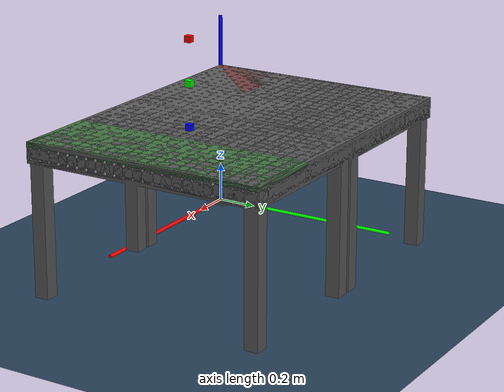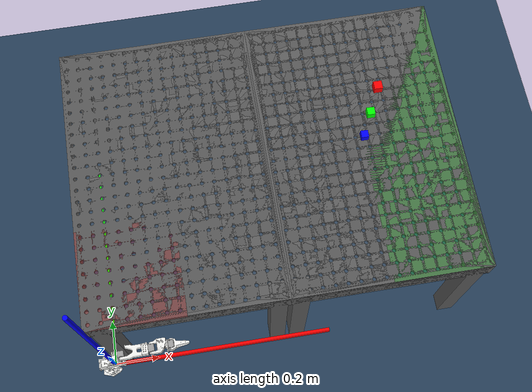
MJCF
<mujoco model="scene">

	<include file="so101_new_calib.xml" />

    <compiler angle="radian" autolimits="true" />

    <option timestep="0.002" integrator="implicitfast" solver="PGS" gravity="0 0 -9.82"
            cone="elliptic">
    </option>

	<!-- 利用mujoco软件来调整Visualization->Free Camera->点击Align更新查看，需要在env代码里进行设置，不能自动启用 -->
    <statistic center="1.8 1.1 1.7" extent="0.8" meansize="0.08" />

    <visual>
        <headlight diffuse="0.6 0.6 0.6" ambient="0.1 0.1 0.1" specular="0 0 0" />
        <rgba haze="0.15 0.25 0.35 1" />

		<!-- 利用mujoco软件来调整Visualization->Free Camera->点击Align更新查看，需要在env代码里进行设置，不能自动启用 -->
		<global azimuth="210" elevation="-35" offheight="1280" offwidth="1280"/>
    </visual>

    <asset>
        <texture type="skybox" builtin="gradient" rgb1="0.3 0.5 0.7" rgb2="0 0 0" width="512"
                 height="3072" />
        <texture type="2d" name="groundplane" builtin="checker" mark="edge" rgb1="0.2 0.3 0.4"
                 rgb2="0.1 0.2 0.3" markrgb="0.8 0.8 0.8" width="300" height="300" />
        <material name="groundplane" texture="groundplane" texuniform="true" texrepeat="5 5"
                  reflectance="0.2" />

        <!--meshes-->
        <mesh name ="table" file="table/sigmund_table.stl" scale= "1 1 1"/>

    </asset>

    <worldbody>
		<light pos="1.3 0.7 2.5" dir="0 0 -1" directional="true" />
		<geom name="floor" size="0 0 0.05" type="plane" material="groundplane" />
		<geom name="x-aixs" group="2" type="cylinder" contype="0" conaffinity="0"
			fromto="0 0 0 1 0 0" size="0.01" rgba="1 0 0 1" />
		<geom name="y-aixs" group="2" type="cylinder" contype="0" conaffinity="0"
			fromto="0 0 0 0 1 0" size="0.01" rgba="0 1 0 1" />
		<geom name="z-aixs" group="2" type="cylinder" contype="0" conaffinity="0"
			fromto="0 0 0 0 0 1" size="0.01" rgba="0 0 1 1" />

		<!-- 利用mujoco软件来调整Rendering->Camera -->
		<camera name="cam" pos="0.85 0.8 1.6" xyaxes="0 -1 0 1 0 0.5" mode="fixed" />

		<body name="mocap" mocap="true" pos="0.8 0.6 0.74">
			<geom name="mocap" type="sphere" size="0.000001"/>
		</body>

		<!-- 红色立方体 -->

		<!-- 绿色立方体 -->

		<!-- 蓝色立方体 -->

		<!-- 立方体堆叠 -->
				<!-- 红色立方体 -->
		<body name="RedBox" pos="1.2 0.6 1.2" quat="1 0 0 0">
		  <joint name="RedBox" type="free" />
		  <geom name="RedBox" type="box" size="0.015 0.015 0.015" rgba="1 0 0 1"
		        condim="6" friction="1.0 0.005 0.0001" solref="0.02 1" solimp="0.9 0.95 0.001"/>
		</body>

		<!-- 绿色立方体 -->
		<body name="GreenBox" pos="1.2 0.6 1.0" quat="1 0 0 0">
		  <joint name="GreenBox" type="free" />
		  <geom name="GreenBox" type="box" size="0.015 0.015 0.015" rgba="0 1 0 1"
		        condim="6" friction="1.0 0.005 0.0001" solref="0.02 1" solimp="0.9 0.95 0.001"/>
		</body>

		<!-- 蓝色立方体 -->
		<body name="BlueBox" pos="1.2 0.6 0.8" quat="1 0 0 0">
		  <joint name="BlueBox" type="free" />
		  <geom name="BlueBox" type="box" size="0.015 0.015 0.015" rgba="0 0 1 1"
		        condim="6" friction="1.0 0.005 0.0001" solref="0.02 1" solimp="0.9 0.95 0.001"/>
		</body>

		<!--Zones-->
		<body name="zone_pickup" pos="1.4 0.6 0.73" quat="1 0 0 0">
			<geom name="zone_pickup" type="box" size="0.2 0.6 0.01" rgba="0 1 0 0.1" contype="0" conaffinity="0"/>
		</body>
		<body name="zone_drop" pos="0.2 0.2 0.73" quat="1 0 0 0">
			<geom name="zone_drop" type="box" size="0.2 0.2 0.01" rgba="1 0 0 0.1" contype="0" conaffinity="0"/>
		</body>

        <!--table -->
		<body name = "table1" euler="0 0 0" pos= "0.8 0 0.74" >
		  <geom name = "table1" type="mesh" mesh="table" group="2" rgba="0.35 0.35 0.35 1" mass="0" contype="0" conaffinity="0"/>
		</body>
		<body name = "table2" euler="0 0 0" pos= "1.6 0 0.74" >
		  <geom name = "table2" type="mesh" mesh="table" group="2" rgba="0.35 0.35 0.35 1" mass="0" contype="0" conaffinity="0"/>
		</body>

		<body name="simple_table" pos="0.8 0.6 0.69" quat="1 0 0 0">
			<geom name="simple_table" type="box" size="0.8 0.6 0.05" rgba="0.5 0.5 0.5 0.1"/>
		</body>
    </worldbody>
<equality>
    <!-- 设置正确的锚点，让 base 在 mocap 位置 -->
    <weld name="attach_so101_to_mocap" body1="mocap" body2="base" anchor="0 0 0" active="true" />
</equality>

</mujoco>

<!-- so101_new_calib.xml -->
<!-- Generated using onshape-to-robot -->
<!-- Onshape https://cad.onshape.com/documents/7715cc284bb430fe6dab4ffd/w/4fd0791b683777b02f8d975a/e/826c553ede3b7592eb9ca800 -->
<mujoco model="so101_new_calib">
  <compiler angle="radian" meshdir="assets" autolimits="true"/>
  <default>
    <default class="so101_new_calib">
      <joint frictionloss="0.1" armature="0.005"/>
      <position kp="50" dampratio="1"/>
      <default class="visual">
        <geom type="mesh" contype="0" conaffinity="0" group="2"/>
      </default>
      <default class="collision">
        <geom group="3"/>
      </default>
    </default>
  </default>
  <!-- Additional joints_properties.xml -->
  <default>
    <default class="sts3215">
      <geom contype="0" conaffinity="0"/>
      <joint damping="0.60" frictionloss="0.052" armature="0.028"/>
      <position kp="17.8" kv="0.0" forcerange="-3.35 3.35"/>
    </default>
    <default class="backlash">
      <!-- +/- 0.5° of backlash -->
      <joint damping="0.01" frictionloss="0" armature="0.01" limited="true" range="-0.008726646259971648 0.008726646259971648"/>
    </default>
  </default>
  <worldbody>
    <!-- Link base -->
    <!-- Definition position and orientation of lerobot -->
    <body name="base" pos="-0.02 -0.02 -0.03" quat="1 0 0 1" childclass="so101_new_calib">
    <!-- Origin-simulation -->
    <!-- make base can be changed  -->

    <!-- make base can be changed  -->
    <joint type="free"/>
      <inertial pos="0.020739 0.00204287 0.065966" mass="0.147" fullinertia="0.000136117 0.000114686 0.000130364 4.59787e-07 9.75275e-08 -4.97151e-06"/>
      <!-- Part base_motor_holder_so101_v1 -->
      <geom type="mesh" class="visual" pos="0.0206915 0.0221255 0.0300817" quat="0.707107 0.707107 7.85046e-16 8.68107e-16" mesh="base_motor_holder_so101_v1" material="base_motor_holder_so101_v1_material"/>
      <!-- Part base_so101_v2 -->
      <geom type="mesh" class="visual" pos="0.0207909 0.0221255 0.0300817" quat="0.707107 0.707107 -0 -0" mesh="base_so101_v2" material="base_so101_v2_material"/>
      <!-- Part sts3215_03a_v1 -->
      <geom type="mesh" class="visual" pos="0.0207909 -0.0105745 0.0761817" quat="0.707107 -7.69919e-16 8.95976e-16 -0.707107" mesh="sts3215_03a_v1" material="sts3215_03a_v1_material"/>
      <!-- Part waveshare_mounting_plate_so101_v2 -->
      <geom type="mesh" class="visual" pos="0.0205915 0.0467435 0.0798817" quat="0.707107 0.707107 -3.34318e-15 5.1276e-15" mesh="waveshare_mounting_plate_so101_v2" material="waveshare_mounting_plate_so101_v2_material"/>
      <!-- Frame base -->
      <site group="3" name="base" pos="0.020791 0.0157608 0.0324817" quat="0 1 0 0"/>
      <!-- Link shoulder -->
      <body name="shoulder" pos="0.0207909 -0.0230745 0.0948817" quat="7.88629e-16 -0.707107 -0.707107 7.69003e-16">
        <!-- Joint from base to shoulder -->
        <joint axis="0 0 1" name="1" type="hinge" range="-1.9198621771937616 1.9198621771937634" class="sts3215"/>
        <inertial pos="-0.0307604 -1.66727e-05 -0.0252713" mass="0.100006" fullinertia="8.3759e-05 8.10403e-05 2.39783e-05 7.55525e-08 -1.16342e-06 1.54663e-07"/>
        <!-- Part sts3215_03a_v1_2 -->
        <geom type="mesh" class="visual" pos="-0.0303992 0.000422241 -0.0417" quat="0.5 0.5 0.5 -0.5" mesh="sts3215_03a_v1" material="sts3215_03a_v1_material"/>
        <geom type="mesh" class="collision" pos="-0.0303992 0.000422241 -0.0417" quat="0.5 0.5 0.5 -0.5" mesh="sts3215_03a_v1" material="sts3215_03a_v1_material"/>
        <!-- Part motor_holder_so101_base_v1 -->
        <geom type="mesh" class="visual" pos="-0.0675992 -0.000177759 0.0158499" quat="0.5 0.5 -0.5 0.5" mesh="motor_holder_so101_base_v1" material="motor_holder_so101_base_v1_material"/>
        <geom type="mesh" class="collision" pos="-0.0675992 -0.000177759 0.0158499" quat="0.5 0.5 -0.5 0.5" mesh="motor_holder_so101_base_v1" material="motor_holder_so101_base_v1_material"/>
        <!-- Part rotation_pitch_so101_v1 -->
        <geom type="mesh" class="visual" pos="0.0122008 2.22413e-05 0.0464" quat="0.707107 -0.707107 0 0" mesh="rotation_pitch_so101_v1" material="rotation_pitch_so101_v1_material"/>
        <geom type="mesh" class="collision" pos="0.0122008 2.22413e-05 0.0464" quat="0.707107 -0.707107 0 0" mesh="rotation_pitch_so101_v1" material="rotation_pitch_so101_v1_material"/>
        <!-- Link upper_arm -->
        <body name="upper_arm" pos="-0.0303992 -0.0182778 -0.0542" quat="0.5 -0.5 -0.5 -0.5">
          <!-- Joint from shoulder to upper_arm -->
          <joint axis="0 0 1" name="2" type="hinge" range="-1.7453292519943269 1.7453292519943322" class="sts3215"/>
          <inertial pos="-0.0898471 -0.00838224 0.0184089" mass="0.103" fullinertia="4.08002e-05 0.000147318 0.000142487 -1.97819e-05 -4.03016e-08 8.97326e-09"/>
          <!-- Part sts3215_03a_v1_3 -->
          <geom type="mesh" class="visual" pos="-0.11257 -0.0155 0.0187" quat="4.31775e-16 -0.707107 0.707107 -2.94392e-16" mesh="sts3215_03a_v1" material="sts3215_03a_v1_material"/>
          <geom type="mesh" class="collision" pos="-0.11257 -0.0155 0.0187" quat="4.31775e-16 -0.707107 0.707107 -2.94392e-16" mesh="sts3215_03a_v1" material="sts3215_03a_v1_material"/>
          <!-- Part upper_arm_so101_v1 -->
          <geom type="mesh" class="visual" pos="-0.065085 0.012 0.0182" quat="0 1 0 0" mesh="upper_arm_so101_v1" material="upper_arm_so101_v1_material"/>
          <geom type="mesh" class="collision" pos="-0.065085 0.012 0.0182" quat="0 1 0 0" mesh="upper_arm_so101_v1" material="upper_arm_so101_v1_material"/>
          <!-- Link lower_arm -->
          <body name="lower_arm" pos="-0.11257 -0.028 2.46331e-16" quat="0.707107 -2.94392e-16 -3.85906e-16 0.707107">
            <!-- Joint from upper_arm to lower_arm -->
            <joint axis="0 0 1" name="3" type="hinge" range="-1.7453292519943295 1.5707963267948966" class="sts3215"/>
            <inertial pos="-0.0980701 0.00324376 0.0182831" mass="0.104" fullinertia="2.87438e-05 0.000159844 0.00014529 7.41152e-06 1.26409e-06 -4.90188e-08"/>
            <!-- Part under_arm_so101_v1 -->
            <geom type="mesh" class="visual" pos="-0.0648499 -0.032 0.0182" quat="0 1 0 0" mesh="under_arm_so101_v1" material="under_arm_so101_v1_material"/>
            <geom type="mesh" class="collision" pos="-0.0648499 -0.032 0.0182" quat="0 1 0 0" mesh="under_arm_so101_v1" material="under_arm_so101_v1_material"/>
            <!-- Part motor_holder_so101_wrist_v1 -->
            <geom type="mesh" class="visual" pos="-0.0648499 -0.032 0.018" quat="3.3891e-16 -1 -1.9186e-15 6.33174e-16" mesh="motor_holder_so101_wrist_v1" material="motor_holder_so101_wrist_v1_material"/>
            <geom type="mesh" class="collision" pos="-0.0648499 -0.032 0.018" quat="3.3891e-16 -1 -1.9186e-15 6.33174e-16" mesh="motor_holder_so101_wrist_v1" material="motor_holder_so101_wrist_v1_material"/>
            <!-- Part sts3215_03a_v1_4 -->
            <geom type="mesh" class="visual" pos="-0.1224 0.0052 0.0187" quat="8.32667e-16 -1.56949e-15 -1 5.55112e-16" mesh="sts3215_03a_v1" material="sts3215_03a_v1_material"/>
            <geom type="mesh" class="collision" pos="-0.1224 0.0052 0.0187" quat="8.32667e-16 -1.56949e-15 -1 5.55112e-16" mesh="sts3215_03a_v1" material="sts3215_03a_v1_material"/>
            <!-- Link wrist -->
            <body name="wrist" pos="-0.1349 0.0052 1.65232e-16" quat="0.707107 1.31614e-15 9.90601e-17 -0.707107">
              <!-- Joint from lower_arm to wrist -->
              <joint axis="0 0 1" name="4" type="hinge" range="-1.6580627969561903 1.658062781833036" class="sts3215"/>
              <inertial pos="-0.000103312 -0.0386143 0.0281156" mass="0.079" fullinertia="3.68263e-05 2.5391e-05 2.1e-05 1.7893e-08 -5.28128e-08 3.6412e-06"/>
              <!-- Part sts3215_03a_no_horn_v1 -->
              <geom type="mesh" class="visual" pos="5.55112e-17 -0.0424 0.0306" quat="0.5 0.5 0.5 -0.5" mesh="sts3215_03a_no_horn_v1" material="sts3215_03a_no_horn_v1_material"/>
              <geom type="mesh" class="collision" pos="5.55112e-17 -0.0424 0.0306" quat="0.5 0.5 0.5 -0.5" mesh="sts3215_03a_no_horn_v1" material="sts3215_03a_no_horn_v1_material"/>
              <!-- Part wrist_roll_pitch_so101_v2 -->
              <geom type="mesh" class="visual" pos="0 -0.028 0.0181" quat="0.5 -0.5 -0.5 -0.5" mesh="wrist_roll_pitch_so101_v2" material="wrist_roll_pitch_so101_v2_material"/>
              <geom type="mesh" class="collision" pos="0 -0.028 0.0181" quat="0.5 -0.5 -0.5 -0.5" mesh="wrist_roll_pitch_so101_v2" material="wrist_roll_pitch_so101_v2_material"/>
              <!-- Link gripper -->
              <body name="gripper" pos="0 -0.0611 0.0181" quat="3.31663e-08 -3.31663e-08 -0.707107 -0.707107">
                <!-- Joint from wrist to gripper -->
                <joint axis="0 0 1" name="5" type="hinge" range="-2.7925268969992407 2.7925267093826136" class="sts3215"/>
                <inertial pos="0.000213627 0.000245138 -0.025187" mass="0.087" fullinertia="2.75087e-05 4.33657e-05 3.45059e-05 -3.35241e-07 -5.7352e-06 -5.17847e-08"/>
                <!-- Part sts3215_03a_v1_5 -->
                <geom type="mesh" class="visual" pos="0.0077 0.0001 -0.0234" quat="0.707107 -0.707107 6.48145e-15 1.58472e-15" mesh="sts3215_03a_v1" material="sts3215_03a_v1_material"/>
                <geom type="mesh" class="collision" pos="0.0077 0.0001 -0.0234" quat="0.707107 -0.707107 6.48145e-15 1.58472e-15" mesh="sts3215_03a_v1" material="sts3215_03a_v1_material"/>
                <!-- Part wrist_roll_follower_so101_v1 -->
                <geom type="mesh" class="visual" pos="5.55112e-17 -0.000218214 0.000949706" quat="0 1 0 0" mesh="wrist_roll_follower_so101_v1" material="wrist_roll_follower_so101_v1_material"/>
                <geom type="mesh" class="collision" pos="5.55112e-17 -0.000218214 0.000949706" quat="0 1 0 0" mesh="wrist_roll_follower_so101_v1" material="wrist_roll_follower_so101_v1_material"/>
                <!-- Frame gripper -->
                <site group="3" name="gripper" pos="-0.0079 -0.000218121 -0.0981274" quat="0.5 -0.5 0.5 -0.5"/>
                <!-- Link moving_jaw_so101_v1 -->
                <body name="moving_jaw_so101_v1" pos="0.0202 0.0188 -0.0234" quat="0.707107 0.707107 1.47485e-15 -6.52758e-15">
                  <!-- Joint from gripper to moving_jaw_so101_v1 -->
                  <joint axis="0 0 1" name="6" type="hinge" range="-0.17453292519943295 1.7453292519943295" class="sts3215"/>
                  <inertial pos="-0.00157495 -0.0300244 0.0192755" mass="0.012" fullinertia="6.61427e-06 1.89032e-06 5.28738e-06 -3.19807e-07 -5.90717e-09 -1.09945e-07"/>
                  <!-- Part moving_jaw_so101_v1 -->
                  <geom type="mesh" class="visual" pos="-5.55112e-17 -1.94746e-17 0.0189" quat="1 -0 1.86338e-16 6.90343e-24" mesh="moving_jaw_so101_v1" material="moving_jaw_so101_v1_material"/>
                  <geom type="mesh" class="collision" pos="-5.55112e-17 -1.94746e-17 0.0189" quat="1 -0 1.86338e-16 6.90343e-24" mesh="moving_jaw_so101_v1" material="moving_jaw_so101_v1_material"/>
                </body>
              </body>
            </body>
          </body>
        </body>
      </body>
    </body>
  </worldbody>
  <asset>
    <mesh file="rotation_pitch_so101_v1.stl"/>
    <mesh file="moving_jaw_so101_v1.stl"/>
    <mesh file="sts3215_03a_v1.stl"/>
    <mesh file="motor_holder_so101_wrist_v1.stl"/>
    <mesh file="wrist_roll_follower_so101_v1.stl"/>
    <mesh file="base_so101_v2.stl"/>
    <mesh file="under_arm_so101_v1.stl"/>
    <mesh file="wrist_roll_pitch_so101_v2.stl"/>
    <mesh file="waveshare_mounting_plate_so101_v2.stl"/>
    <mesh file="sts3215_03a_no_horn_v1.stl"/>
    <mesh file="motor_holder_so101_base_v1.stl"/>
    <mesh file="base_motor_holder_so101_v1.stl"/>
    <mesh file="upper_arm_so101_v1.stl"/>
    <material name="base_motor_holder_so101_v1_material" rgba="0.964706 0.964706 0.952941 1"/>
    <material name="base_so101_v2_material" rgba="0.964706 0.964706 0.952941 1"/>
    <material name="sts3215_03a_v1_material" rgba="0.627451 0.627451 0.627451 1"/>
    <material name="waveshare_mounting_plate_so101_v2_material" rgba="0.964706 0.964706 0.952941 1"/>
    <material name="motor_holder_so101_base_v1_material" rgba="0.964706 0.964706 0.952941 1"/>
    <material name="rotation_pitch_so101_v1_material" rgba="0.964706 0.964706 0.952941 1"/>
    <material name="upper_arm_so101_v1_material" rgba="0.964706 0.964706 0.952941 1"/>
    <material name="under_arm_so101_v1_material" rgba="0.964706 0.964706 0.952941 1"/>
    <material name="motor_holder_so101_wrist_v1_material" rgba="0.964706 0.964706 0.952941 1"/>
    <material name="sts3215_03a_no_horn_v1_material" rgba="0.627451 0.627451 0.627451 1"/>
    <material name="wrist_roll_pitch_so101_v2_material" rgba="0.964706 0.964706 0.952941 1"/>
    <material name="wrist_roll_follower_so101_v1_material" rgba="0.964706 0.964706 0.952941 1"/>
    <material name="moving_jaw_so101_v1_material" rgba="0.964706 0.964706 0.952941 1"/>
  </asset>
  <actuator>
    <position class="sts3215" name="1" joint="1" inheritrange="1"/>
    <position class="sts3215" name="2" joint="2" inheritrange="1"/>
    <position class="sts3215" name="3" joint="3" inheritrange="1"/>
    <position class="sts3215" name="4" joint="4" inheritrange="1"/>
    <position class="sts3215" name="5" joint="5" inheritrange="1"/>
    <position class="sts3215" name="6" joint="6" inheritrange="1"/>
  </actuator>
  <equality/>
</mujoco>
